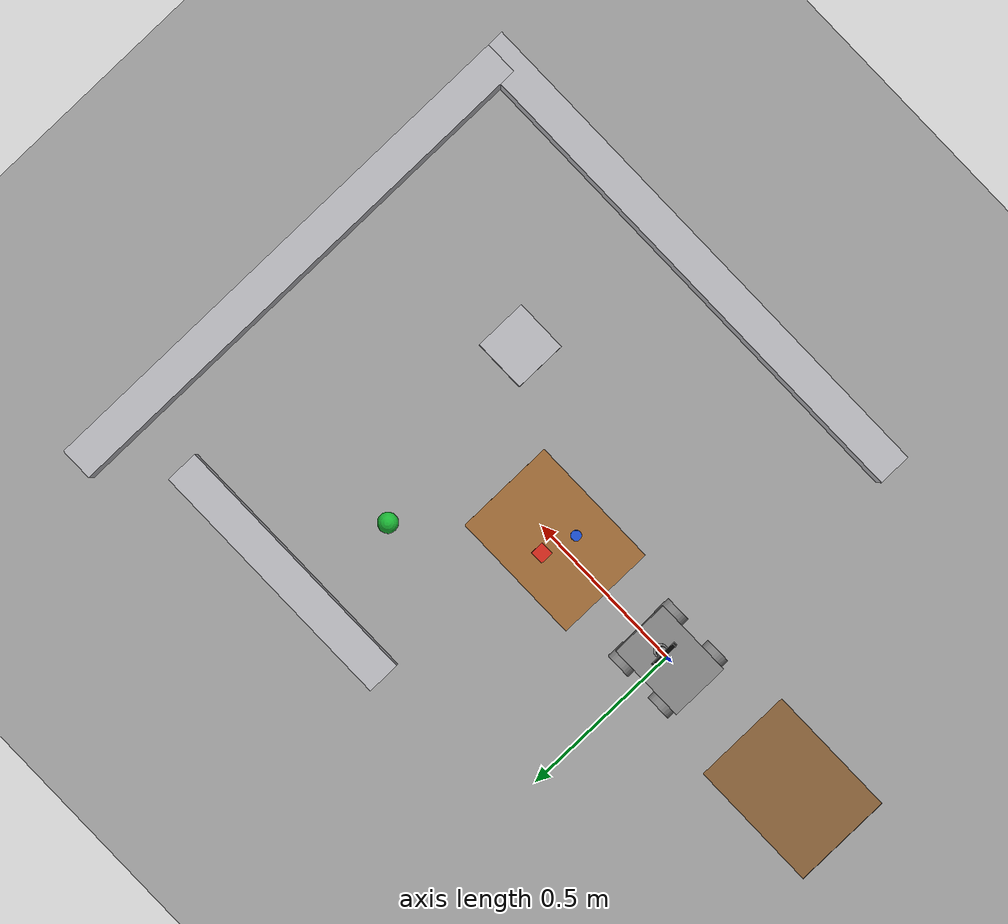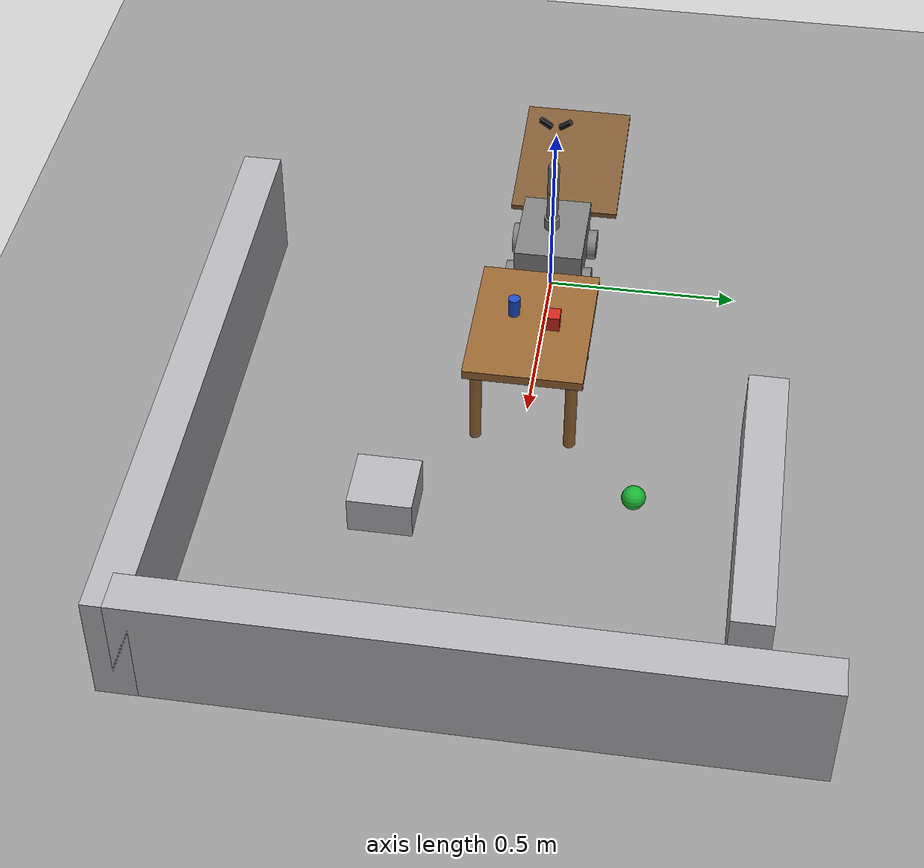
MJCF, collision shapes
<mujoco model="m3pro_basic">
  <include file="m3pro_robot.xml"/>

  <option timestep="0.002" gravity="0 0 -9.81"/>

  <visual>
    <global azimuth="135" elevation="-25"/>
    <quality shadowsize="2048"/>
  </visual>

  <asset>
    <texture type="2d" name="groundplane" builtin="checker" rgb1="0.55 0.55 0.55" rgb2="0.65 0.65 0.65" width="512" height="512" mark="edge" markrgb="0.5 0.5 0.5"/>
    <material name="groundplane" texture="groundplane" texrepeat="5 5" texuniform="true" reflectance="0.05"/>
    <material name="table_wood" rgba="0.6 0.4 0.2 1" specular="0.3" shininess="0.2"/>
    <material name="red_plastic" rgba="0.8 0.15 0.1 1" specular="0.4" shininess="0.3"/>
    <material name="blue_plastic" rgba="0.1 0.3 0.8 1" specular="0.4" shininess="0.3"/>
    <material name="wall_concrete" rgba="0.7 0.7 0.72 1" specular="0.2" shininess="0.1"/>
    <material name="ramp_wood" rgba="0.5 0.35 0.2 1" specular="0.2" shininess="0.1"/>
    <material name="green_plastic" rgba="0.1 0.7 0.2 1" specular="0.4" shininess="0.3"/>
  </asset>

  <worldbody>
    <light name="top_light" pos="0 0 3" dir="0 0 -1" diffuse="0.9 0.9 0.9" specular="0.4 0.4 0.4" castshadow="true"/>
    <light name="side_light" pos="2 -2 2" dir="-1 1 -1" diffuse="0.5 0.5 0.5" specular="0.2 0.2 0.2"/>
    <light name="fill_light" pos="-2 2 2" dir="1 -1 -1" diffuse="0.3 0.3 0.3" specular="0.1 0.1 0.1"/>
    <camera name="tracking" pos="0.6 -0.8 0.5" xyaxes="0.8 0.6 0 -0.25 0.33 0.91" mode="trackcom"/>
    <camera name="overview" pos="1.5 -1.5 2.5" xyaxes="0.707 0.707 0 -0.35 0.35 0.87" mode="fixed"/>

    <geom name="ground" type="plane" size="5 5 0.1" material="groundplane"/>

    <!-- ==================== Table ==================== -->
    <!-- Low table within arm reach (top surface at z=0.252) -->
    <body name="table" pos="0.45 0 0">
      <geom name="table_top" type="box" pos="0 0 0.24" size="0.2 0.15 0.012"
            material="table_wood" mass="5"/>
      <geom name="table_leg_fl" type="cylinder" pos="0.16 0.12 0.114" size="0.015 0.114"
            material="table_wood"/>
      <geom name="table_leg_fr" type="cylinder" pos="0.16 -0.12 0.114" size="0.015 0.114"
            material="table_wood"/>
      <geom name="table_leg_rl" type="cylinder" pos="-0.16 0.12 0.114" size="0.015 0.114"
            material="table_wood"/>
      <geom name="table_leg_rr" type="cylinder" pos="-0.16 -0.12 0.114" size="0.015 0.114"
            material="table_wood"/>
    </body>

    <!-- ==================== Graspable Objects ==================== -->
    <!-- Red box on table -->
    <body name="red_box" pos="0.45 0.05 0.272">
      <freejoint name="red_box_joint"/>
      <inertial pos="0 0 0" mass="0.05" diaginertia="1.3e-5 1.3e-5 1.3e-5"/>
      <geom name="red_box_geom" type="box" size="0.02 0.02 0.02"
            material="red_plastic" friction="1.0 0.5 0.01"/>
    </body>

    <!-- Blue cylinder on table -->
    <body name="blue_cylinder" pos="0.42 -0.05 0.277">
      <freejoint name="blue_cylinder_joint"/>
      <inertial pos="0 0 0" mass="0.03" diaginertia="5e-6 5e-6 8e-6"/>
      <geom name="blue_cylinder_geom" type="cylinder" size="0.015 0.025"
            material="blue_plastic" friction="1.0 0.5 0.01"/>
    </body>

    <!-- Green sphere on floor (push target) -->
    <body name="green_ball" pos="0.8 0.3 0.03">
      <freejoint name="green_ball_joint"/>
      <inertial pos="0 0 0" mass="0.1" diaginertia="3.6e-5 3.6e-5 3.6e-5"/>
      <geom name="green_ball_geom" type="sphere" size="0.03"
            material="green_plastic" friction="0.8 0.3 0.01"/>
    </body>

    <!-- ==================== Walls / Barriers ==================== -->
    <geom name="wall_front" type="box" pos="1.5 0 0.15" size="0.05 0.8 0.15"
          material="wall_concrete"/>
    <geom name="wall_right" type="box" pos="0.75 -0.8 0.15" size="0.8 0.05 0.15"
          material="wall_concrete"/>
    <geom name="wall_left_short" type="box" pos="0.9 0.6 0.1" size="0.4 0.05 0.1"
          material="wall_concrete"/>

    <!-- Small box obstacle on the floor -->
    <geom name="floor_obstacle" type="box" pos="0.9 -0.3 0.05" size="0.08 0.08 0.05"
          material="wall_concrete"/>

    <!-- ==================== Ramp ==================== -->
    <!-- Gentle ramp behind robot for wheel traction testing -->
    <body name="ramp" pos="-0.5 0 0">
      <geom name="ramp_surface" type="box" pos="0 0 0.038" size="0.2 0.15 0.008"
            euler="0 0.15 0" material="ramp_wood" mass="10" friction="1.5 0.5 0.01"/>
    </body>
  </worldbody>
</mujoco>

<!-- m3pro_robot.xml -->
<mujoco>
  <compiler angle="radian" meshdir="../meshes"/>

  <default>
    <geom contype="1" conaffinity="1"/>
    <joint damping="0.5" armature="0.01"/>

    <default class="visual">
      <geom contype="0" conaffinity="0" group="1"/>
    </default>

    <default class="collision">
      <geom group="3" rgba="0.5 0.5 0.5 0.3"/>
    </default>
  </default>

  <asset>
    <material name="black_aluminum" rgba="0.2 0.2 0.22 1" specular="0.6" shininess="0.3" reflectance="0.08"/>
    <material name="green_pcb" rgba="0.0 0.5 0.18 1" specular="0.3" shininess="0.2"/>
    <material name="black_rubber" rgba="0.22 0.22 0.22 1" specular="0.1" shininess="0.05"/>
    <material name="blue_servo" rgba="0.15 0.35 0.7 1" specular="0.5" shininess="0.4"/>
    <material name="silver_bracket" rgba="0.75 0.75 0.78 1" specular="0.7" shininess="0.5" reflectance="0.1"/>
    <material name="dark_plastic" rgba="0.18 0.18 0.18 1" specular="0.3" shininess="0.2"/>
    <material name="camera_body" rgba="0.22 0.22 0.24 1" specular="0.4" shininess="0.3"/>

    <mesh name="base_link" file="base_link.stl"/>
    <mesh name="arm_base_Link" file="arm_base_Link.stl"/>
    <mesh name="arm1" file="arm1.stl"/>
    <mesh name="arm2" file="arm2.stl"/>
    <mesh name="arm3" file="arm3.stl"/>
    <mesh name="arm4" file="arm4.stl"/>
    <mesh name="arm5" file="arm5.stl"/>
    <mesh name="rlink1" file="rlink1.stl"/>
    <mesh name="rlink2" file="rlink2.stl"/>
    <mesh name="llink1" file="llink1.stl"/>
    <mesh name="llink2" file="llink2.stl"/>
    <mesh name="rlink3" file="rlink3.stl"/>
    <mesh name="llink3" file="llink3.stl"/>
    <mesh name="Gripping" file="Gripping.stl"/>
    <mesh name="DCW2" file="DCW2.stl"/>
    <mesh name="Camera" file="Camera.stl"/>
    <mesh name="lwheel1" file="lwheel1.stl"/>
    <mesh name="lwheel2" file="lwheel2.stl"/>
    <mesh name="rwheel1" file="rwheel1.stl"/>
    <mesh name="rwheel2" file="rwheel2.stl"/>
  </asset>

  <worldbody>
    <body name="base_link" pos="0 0 0.042">
      <freejoint name="base_freejoint"/>
      <inertial pos="-0.0231 -0.000624 0.0924" mass="0.871"
                diaginertia="0.000965 0.000924 0.00167"/>

      <geom name="base_visual" type="mesh" mesh="base_link" class="visual"
            material="black_aluminum"/>
      <geom name="base_collision" type="box" class="collision"
            pos="-0.005 0 0.09" size="0.12 0.09 0.06"
            contype="1" conaffinity="0"/>

      <geom name="arm_base_visual" type="mesh" mesh="arm_base_Link" class="visual"
            pos="0.033617 -1.0031e-05 0" quat="1 3.18755e-05 0 0"
            material="green_pcb"/>

      <site name="imu_site" pos="0 0 0.07" size="0.005" rgba="1 0 0 0.5"/>

      <!-- Front-left wheel -->
      <body name="lwheel1" pos="0.0775754 0.09775 0.04" quat="0.707107 0.707107 0 0">
        <inertial pos="0 0 0.0109" mass="0.0973"
                  diaginertia="7.46e-05 4.45e-05 4.45e-05"/>
        <joint name="lwheel1_joint" type="hinge" axis="0 0 -1" damping="0.05" armature="0.005"/>
        <geom name="lwheel1_visual" type="mesh" mesh="lwheel1" class="visual"
              material="black_rubber"/>
        <geom name="lwheel1_collision" type="cylinder" size="0.04 0.0275"
              pos="0 0 0.0109" class="collision"
              contype="1" conaffinity="0"/>
      <body name="lwheel1_roller_0_link" pos="0.0138115 0.00370079 0.0109">
        <joint name="lwheel1_slipping_0_joint" type="hinge" pos="0 0 0" axis="-0.00198325 0.00740157 0.0275"
               damping="0.1" limited="false" actuatorfrclimited="false"/>
        <inertial pos="0 0 0" mass="0.001" diaginertia="1e-5 1e-5 1e-5"/>
        <geom name="lwheel1_roller_0_geom" type="sphere" size="0.0251969"
              contype="1" conaffinity="0" group="3" rgba="0.15 0.15 0.15 1"/>
      </body>
      <body name="lwheel1_roller_1_link" pos="0.0101107 0.0101107 0.0109">
        <joint name="lwheel1_slipping_1_joint" type="hinge" pos="0 0 0" axis="-0.00541833 0.00541833 0.0275"
               damping="0.1" limited="false" actuatorfrclimited="false"/>
        <inertial pos="0 0 0" mass="0.001" diaginertia="1e-5 1e-5 1e-5"/>
        <geom name="lwheel1_roller_1_geom" type="sphere" size="0.0251969"
              contype="1" conaffinity="0" group="3" rgba="0.15 0.15 0.15 1"/>
      </body>
      <body name="lwheel1_roller_2_link" pos="0.00370079 0.0138115 0.0109">
        <joint name="lwheel1_slipping_2_joint" type="hinge" pos="0 0 0" axis="-0.00740157 0.00198325 0.0275"
               damping="0.1" limited="false" actuatorfrclimited="false"/>
        <inertial pos="0 0 0" mass="0.001" diaginertia="1e-5 1e-5 1e-5"/>
        <geom name="lwheel1_roller_2_geom" type="sphere" size="0.0251969"
              contype="1" conaffinity="0" group="3" rgba="0.15 0.15 0.15 1"/>
      </body>
      <body name="lwheel1_roller_3_link" pos="-0.00370079 0.0138115 0.0109">
        <joint name="lwheel1_slipping_3_joint" type="hinge" pos="0 0 0" axis="-0.00740157 -0.00198325 0.0275"
               damping="0.1" limited="false" actuatorfrclimited="false"/>
        <inertial pos="0 0 0" mass="0.001" diaginertia="1e-5 1e-5 1e-5"/>
        <geom name="lwheel1_roller_3_geom" type="sphere" size="0.0251969"
              contype="1" conaffinity="0" group="3" rgba="0.15 0.15 0.15 1"/>
      </body>
      <body name="lwheel1_roller_4_link" pos="-0.0101107 0.0101107 0.0109">
        <joint name="lwheel1_slipping_4_joint" type="hinge" pos="0 0 0" axis="-0.00541833 -0.00541833 0.0275"
               damping="0.1" limited="false" actuatorfrclimited="false"/>
        <inertial pos="0 0 0" mass="0.001" diaginertia="1e-5 1e-5 1e-5"/>
        <geom name="lwheel1_roller_4_geom" type="sphere" size="0.0251969"
              contype="1" conaffinity="0" group="3" rgba="0.15 0.15 0.15 1"/>
      </body>
      <body name="lwheel1_roller_5_link" pos="-0.0138115 0.00370079 0.0109">
        <joint name="lwheel1_slipping_5_joint" type="hinge" pos="0 0 0" axis="-0.00198325 -0.00740157 0.0275"
               damping="0.1" limited="false" actuatorfrclimited="false"/>
        <inertial pos="0 0 0" mass="0.001" diaginertia="1e-5 1e-5 1e-5"/>
        <geom name="lwheel1_roller_5_geom" type="sphere" size="0.0251969"
              contype="1" conaffinity="0" group="3" rgba="0.15 0.15 0.15 1"/>
      </body>
      <body name="lwheel1_roller_6_link" pos="-0.0138115 -0.00370079 0.0109">
        <joint name="lwheel1_slipping_6_joint" type="hinge" pos="0 0 0" axis="0.00198325 -0.00740157 0.0275"
               damping="0.1" limited="false" actuatorfrclimited="false"/>
        <inertial pos="0 0 0" mass="0.001" diaginertia="1e-5 1e-5 1e-5"/>
        <geom name="lwheel1_roller_6_geom" type="sphere" size="0.0251969"
              contype="1" conaffinity="0" group="3" rgba="0.15 0.15 0.15 1"/>
      </body>
      <body name="lwheel1_roller_7_link" pos="-0.0101107 -0.0101107 0.0109">
        <joint name="lwheel1_slipping_7_joint" type="hinge" pos="0 0 0" axis="0.00541833 -0.00541833 0.0275"
               damping="0.1" limited="false" actuatorfrclimited="false"/>
        <inertial pos="0 0 0" mass="0.001" diaginertia="1e-5 1e-5 1e-5"/>
        <geom name="lwheel1_roller_7_geom" type="sphere" size="0.0251969"
              contype="1" conaffinity="0" group="3" rgba="0.15 0.15 0.15 1"/>
      </body>
      <body name="lwheel1_roller_8_link" pos="-0.00370079 -0.0138115 0.0109">
        <joint name="lwheel1_slipping_8_joint" type="hinge" pos="0 0 0" axis="0.00740157 -0.00198325 0.0275"
               damping="0.1" limited="false" actuatorfrclimited="false"/>
        <inertial pos="0 0 0" mass="0.001" diaginertia="1e-5 1e-5 1e-5"/>
        <geom name="lwheel1_roller_8_geom" type="sphere" size="0.0251969"
              contype="1" conaffinity="0" group="3" rgba="0.15 0.15 0.15 1"/>
      </body>
      <body name="lwheel1_roller_9_link" pos="0.00370079 -0.0138115 0.0109">
        <joint name="lwheel1_slipping_9_joint" type="hinge" pos="0 0 0" axis="0.00740157 0.00198325 0.0275"
               damping="0.1" limited="false" actuatorfrclimited="false"/>
        <inertial pos="0 0 0" mass="0.001" diaginertia="1e-5 1e-5 1e-5"/>
        <geom name="lwheel1_roller_9_geom" type="sphere" size="0.0251969"
              contype="1" conaffinity="0" group="3" rgba="0.15 0.15 0.15 1"/>
      </body>
      <body name="lwheel1_roller_10_link" pos="0.0101107 -0.0101107 0.0109">
        <joint name="lwheel1_slipping_10_joint" type="hinge" pos="0 0 0" axis="0.00541833 0.00541833 0.0275"
               damping="0.1" limited="false" actuatorfrclimited="false"/>
        <inertial pos="0 0 0" mass="0.001" diaginertia="1e-5 1e-5 1e-5"/>
        <geom name="lwheel1_roller_10_geom" type="sphere" size="0.0251969"
              contype="1" conaffinity="0" group="3" rgba="0.15 0.15 0.15 1"/>
      </body>
      <body name="lwheel1_roller_11_link" pos="0.0138115 -0.00370079 0.0109">
        <joint name="lwheel1_slipping_11_joint" type="hinge" pos="0 0 0" axis="0.00198325 0.00740157 0.0275"
               damping="0.1" limited="false" actuatorfrclimited="false"/>
        <inertial pos="0 0 0" mass="0.001" diaginertia="1e-5 1e-5 1e-5"/>
        <geom name="lwheel1_roller_11_geom" type="sphere" size="0.0251969"
              contype="1" conaffinity="0" group="3" rgba="0.15 0.15 0.15 1"/>
      </body>
      </body>

      <!-- Front-right wheel -->
      <body name="rwheel1" pos="0.0775754 -0.09775 0.04" quat="0.707107 -0.707107 0 0">
        <inertial pos="0 0 0.0109" mass="0.0973"
                  diaginertia="7.46e-05 4.45e-05 4.45e-05"/>
        <joint name="rwheel1_joint" type="hinge" axis="0 0 1" damping="0.05" armature="0.005"/>
        <geom name="rwheel1_visual" type="mesh" mesh="rwheel1" class="visual"
              material="black_rubber"/>
        <geom name="rwheel1_collision" type="cylinder" size="0.04 0.0275"
              pos="0 0 0.0109" class="collision"
              contype="1" conaffinity="0"/>
      <body name="rwheel1_roller_0_link" pos="0.0138115 -0.00370079 0.0109">
        <joint name="rwheel1_slipping_0_joint" type="hinge" pos="0 0 0" axis="-0.00198325 -0.00740157 0.0275"
               damping="0.1" limited="false" actuatorfrclimited="false"/>
        <inertial pos="0 0 0" mass="0.001" diaginertia="1e-5 1e-5 1e-5"/>
        <geom name="rwheel1_roller_0_geom" type="sphere" size="0.0251969"
              contype="1" conaffinity="0" group="3" rgba="0.15 0.15 0.15 1"/>
      </body>
      <body name="rwheel1_roller_1_link" pos="0.0138115 0.00370079 0.0109">
        <joint name="rwheel1_slipping_1_joint" type="hinge" pos="0 0 0" axis="0.00198325 -0.00740157 0.0275"
               damping="0.1" limited="false" actuatorfrclimited="false"/>
        <inertial pos="0 0 0" mass="0.001" diaginertia="1e-5 1e-5 1e-5"/>
        <geom name="rwheel1_roller_1_geom" type="sphere" size="0.0251969"
              contype="1" conaffinity="0" group="3" rgba="0.15 0.15 0.15 1"/>
      </body>
      <body name="rwheel1_roller_2_link" pos="0.0101107 0.0101107 0.0109">
        <joint name="rwheel1_slipping_2_joint" type="hinge" pos="0 0 0" axis="0.00541833 -0.00541833 0.0275"
               damping="0.1" limited="false" actuatorfrclimited="false"/>
        <inertial pos="0 0 0" mass="0.001" diaginertia="1e-5 1e-5 1e-5"/>
        <geom name="rwheel1_roller_2_geom" type="sphere" size="0.0251969"
              contype="1" conaffinity="0" group="3" rgba="0.15 0.15 0.15 1"/>
      </body>
      <body name="rwheel1_roller_3_link" pos="0.00370079 0.0138115 0.0109">
        <joint name="rwheel1_slipping_3_joint" type="hinge" pos="0 0 0" axis="0.00740157 -0.00198325 0.0275"
               damping="0.1" limited="false" actuatorfrclimited="false"/>
        <inertial pos="0 0 0" mass="0.001" diaginertia="1e-5 1e-5 1e-5"/>
        <geom name="rwheel1_roller_3_geom" type="sphere" size="0.0251969"
              contype="1" conaffinity="0" group="3" rgba="0.15 0.15 0.15 1"/>
      </body>
      <body name="rwheel1_roller_4_link" pos="-0.00370079 0.0138115 0.0109">
        <joint name="rwheel1_slipping_4_joint" type="hinge" pos="0 0 0" axis="0.00740157 0.00198325 0.0275"
               damping="0.1" limited="false" actuatorfrclimited="false"/>
        <inertial pos="0 0 0" mass="0.001" diaginertia="1e-5 1e-5 1e-5"/>
        <geom name="rwheel1_roller_4_geom" type="sphere" size="0.0251969"
              contype="1" conaffinity="0" group="3" rgba="0.15 0.15 0.15 1"/>
      </body>
      <body name="rwheel1_roller_5_link" pos="-0.0101107 0.0101107 0.0109">
        <joint name="rwheel1_slipping_5_joint" type="hinge" pos="0 0 0" axis="0.00541833 0.00541833 0.0275"
               damping="0.1" limited="false" actuatorfrclimited="false"/>
        <inertial pos="0 0 0" mass="0.001" diaginertia="1e-5 1e-5 1e-5"/>
        <geom name="rwheel1_roller_5_geom" type="sphere" size="0.0251969"
              contype="1" conaffinity="0" group="3" rgba="0.15 0.15 0.15 1"/>
      </body>
      <body name="rwheel1_roller_6_link" pos="-0.0138115 0.00370079 0.0109">
        <joint name="rwheel1_slipping_6_joint" type="hinge" pos="0 0 0" axis="0.00198325 0.00740157 0.0275"
               damping="0.1" limited="false" actuatorfrclimited="false"/>
        <inertial pos="0 0 0" mass="0.001" diaginertia="1e-5 1e-5 1e-5"/>
        <geom name="rwheel1_roller_6_geom" type="sphere" size="0.0251969"
              contype="1" conaffinity="0" group="3" rgba="0.15 0.15 0.15 1"/>
      </body>
      <body name="rwheel1_roller_7_link" pos="-0.0138115 -0.00370079 0.0109">
        <joint name="rwheel1_slipping_7_joint" type="hinge" pos="0 0 0" axis="-0.00198325 0.00740157 0.0275"
               damping="0.1" limited="false" actuatorfrclimited="false"/>
        <inertial pos="0 0 0" mass="0.001" diaginertia="1e-5 1e-5 1e-5"/>
        <geom name="rwheel1_roller_7_geom" type="sphere" size="0.0251969"
              contype="1" conaffinity="0" group="3" rgba="0.15 0.15 0.15 1"/>
      </body>
      <body name="rwheel1_roller_8_link" pos="-0.0101107 -0.0101107 0.0109">
        <joint name="rwheel1_slipping_8_joint" type="hinge" pos="0 0 0" axis="-0.00541833 0.00541833 0.0275"
               damping="0.1" limited="false" actuatorfrclimited="false"/>
        <inertial pos="0 0 0" mass="0.001" diaginertia="1e-5 1e-5 1e-5"/>
        <geom name="rwheel1_roller_8_geom" type="sphere" size="0.0251969"
              contype="1" conaffinity="0" group="3" rgba="0.15 0.15 0.15 1"/>
      </body>
      <body name="rwheel1_roller_9_link" pos="-0.00370079 -0.0138115 0.0109">
        <joint name="rwheel1_slipping_9_joint" type="hinge" pos="0 0 0" axis="-0.00740157 0.00198325 0.0275"
               damping="0.1" limited="false" actuatorfrclimited="false"/>
        <inertial pos="0 0 0" mass="0.001" diaginertia="1e-5 1e-5 1e-5"/>
        <geom name="rwheel1_roller_9_geom" type="sphere" size="0.0251969"
              contype="1" conaffinity="0" group="3" rgba="0.15 0.15 0.15 1"/>
      </body>
      <body name="rwheel1_roller_10_link" pos="0.00370079 -0.0138115 0.0109">
        <joint name="rwheel1_slipping_10_joint" type="hinge" pos="0 0 0" axis="-0.00740157 -0.00198325 0.0275"
               damping="0.1" limited="false" actuatorfrclimited="false"/>
        <inertial pos="0 0 0" mass="0.001" diaginertia="1e-5 1e-5 1e-5"/>
        <geom name="rwheel1_roller_10_geom" type="sphere" size="0.0251969"
              contype="1" conaffinity="0" group="3" rgba="0.15 0.15 0.15 1"/>
      </body>
      <body name="rwheel1_roller_11_link" pos="0.0101107 -0.0101107 0.0109">
        <joint name="rwheel1_slipping_11_joint" type="hinge" pos="0 0 0" axis="-0.00541833 -0.00541833 0.0275"
               damping="0.1" limited="false" actuatorfrclimited="false"/>
        <inertial pos="0 0 0" mass="0.001" diaginertia="1e-5 1e-5 1e-5"/>
        <geom name="rwheel1_roller_11_geom" type="sphere" size="0.0251969"
              contype="1" conaffinity="0" group="3" rgba="0.15 0.15 0.15 1"/>
      </body>
      </body>

      <!-- Rear-left wheel -->
      <body name="lwheel2" pos="-0.0814246 0.09775 0.04" quat="0.707107 0.707107 0 0">
        <inertial pos="0 0 0.0109" mass="0.0973"
                  diaginertia="7.46e-05 4.45e-05 4.45e-05"/>
        <joint name="lwheel2_joint" type="hinge" axis="0 0 -1" damping="0.05" armature="0.005"/>
        <geom name="lwheel2_visual" type="mesh" mesh="lwheel2" class="visual"
              material="black_rubber"/>
        <geom name="lwheel2_collision" type="cylinder" size="0.04 0.0275"
              pos="0 0 0.0109" class="collision"
              contype="1" conaffinity="0"/>
      <body name="lwheel2_roller_0_link" pos="0.0138115 -0.00370079 0.0109">
        <joint name="lwheel2_slipping_0_joint" type="hinge" pos="0 0 0" axis="-0.00198325 -0.00740157 0.0275"
               damping="0.1" limited="false" actuatorfrclimited="false"/>
        <inertial pos="0 0 0" mass="0.001" diaginertia="1e-5 1e-5 1e-5"/>
        <geom name="lwheel2_roller_0_geom" type="sphere" size="0.0251969"
              contype="1" conaffinity="0" group="3" rgba="0.15 0.15 0.15 1"/>
      </body>
      <body name="lwheel2_roller_1_link" pos="0.0138115 0.00370079 0.0109">
        <joint name="lwheel2_slipping_1_joint" type="hinge" pos="0 0 0" axis="0.00198325 -0.00740157 0.0275"
               damping="0.1" limited="false" actuatorfrclimited="false"/>
        <inertial pos="0 0 0" mass="0.001" diaginertia="1e-5 1e-5 1e-5"/>
        <geom name="lwheel2_roller_1_geom" type="sphere" size="0.0251969"
              contype="1" conaffinity="0" group="3" rgba="0.15 0.15 0.15 1"/>
      </body>
      <body name="lwheel2_roller_2_link" pos="0.0101107 0.0101107 0.0109">
        <joint name="lwheel2_slipping_2_joint" type="hinge" pos="0 0 0" axis="0.00541833 -0.00541833 0.0275"
               damping="0.1" limited="false" actuatorfrclimited="false"/>
        <inertial pos="0 0 0" mass="0.001" diaginertia="1e-5 1e-5 1e-5"/>
        <geom name="lwheel2_roller_2_geom" type="sphere" size="0.0251969"
              contype="1" conaffinity="0" group="3" rgba="0.15 0.15 0.15 1"/>
      </body>
      <body name="lwheel2_roller_3_link" pos="0.00370079 0.0138115 0.0109">
        <joint name="lwheel2_slipping_3_joint" type="hinge" pos="0 0 0" axis="0.00740157 -0.00198325 0.0275"
               damping="0.1" limited="false" actuatorfrclimited="false"/>
        <inertial pos="0 0 0" mass="0.001" diaginertia="1e-5 1e-5 1e-5"/>
        <geom name="lwheel2_roller_3_geom" type="sphere" size="0.0251969"
              contype="1" conaffinity="0" group="3" rgba="0.15 0.15 0.15 1"/>
      </body>
      <body name="lwheel2_roller_4_link" pos="-0.00370079 0.0138115 0.0109">
        <joint name="lwheel2_slipping_4_joint" type="hinge" pos="0 0 0" axis="0.00740157 0.00198325 0.0275"
               damping="0.1" limited="false" actuatorfrclimited="false"/>
        <inertial pos="0 0 0" mass="0.001" diaginertia="1e-5 1e-5 1e-5"/>
        <geom name="lwheel2_roller_4_geom" type="sphere" size="0.0251969"
              contype="1" conaffinity="0" group="3" rgba="0.15 0.15 0.15 1"/>
      </body>
      <body name="lwheel2_roller_5_link" pos="-0.0101107 0.0101107 0.0109">
        <joint name="lwheel2_slipping_5_joint" type="hinge" pos="0 0 0" axis="0.00541833 0.00541833 0.0275"
               damping="0.1" limited="false" actuatorfrclimited="false"/>
        <inertial pos="0 0 0" mass="0.001" diaginertia="1e-5 1e-5 1e-5"/>
        <geom name="lwheel2_roller_5_geom" type="sphere" size="0.0251969"
              contype="1" conaffinity="0" group="3" rgba="0.15 0.15 0.15 1"/>
      </body>
      <body name="lwheel2_roller_6_link" pos="-0.0138115 0.00370079 0.0109">
        <joint name="lwheel2_slipping_6_joint" type="hinge" pos="0 0 0" axis="0.00198325 0.00740157 0.0275"
               damping="0.1" limited="false" actuatorfrclimited="false"/>
        <inertial pos="0 0 0" mass="0.001" diaginertia="1e-5 1e-5 1e-5"/>
        <geom name="lwheel2_roller_6_geom" type="sphere" size="0.0251969"
              contype="1" conaffinity="0" group="3" rgba="0.15 0.15 0.15 1"/>
      </body>
      <body name="lwheel2_roller_7_link" pos="-0.0138115 -0.00370079 0.0109">
        <joint name="lwheel2_slipping_7_joint" type="hinge" pos="0 0 0" axis="-0.00198325 0.00740157 0.0275"
               damping="0.1" limited="false" actuatorfrclimited="false"/>
        <inertial pos="0 0 0" mass="0.001" diaginertia="1e-5 1e-5 1e-5"/>
        <geom name="lwheel2_roller_7_geom" type="sphere" size="0.0251969"
              contype="1" conaffinity="0" group="3" rgba="0.15 0.15 0.15 1"/>
      </body>
      <body name="lwheel2_roller_8_link" pos="-0.0101107 -0.0101107 0.0109">
        <joint name="lwheel2_slipping_8_joint" type="hinge" pos="0 0 0" axis="-0.00541833 0.00541833 0.0275"
               damping="0.1" limited="false" actuatorfrclimited="false"/>
        <inertial pos="0 0 0" mass="0.001" diaginertia="1e-5 1e-5 1e-5"/>
        <geom name="lwheel2_roller_8_geom" type="sphere" size="0.0251969"
              contype="1" conaffinity="0" group="3" rgba="0.15 0.15 0.15 1"/>
      </body>
      <body name="lwheel2_roller_9_link" pos="-0.00370079 -0.0138115 0.0109">
        <joint name="lwheel2_slipping_9_joint" type="hinge" pos="0 0 0" axis="-0.00740157 0.00198325 0.0275"
               damping="0.1" limited="false" actuatorfrclimited="false"/>
        <inertial pos="0 0 0" mass="0.001" diaginertia="1e-5 1e-5 1e-5"/>
        <geom name="lwheel2_roller_9_geom" type="sphere" size="0.0251969"
              contype="1" conaffinity="0" group="3" rgba="0.15 0.15 0.15 1"/>
      </body>
      <body name="lwheel2_roller_10_link" pos="0.00370079 -0.0138115 0.0109">
        <joint name="lwheel2_slipping_10_joint" type="hinge" pos="0 0 0" axis="-0.00740157 -0.00198325 0.0275"
               damping="0.1" limited="false" actuatorfrclimited="false"/>
        <inertial pos="0 0 0" mass="0.001" diaginertia="1e-5 1e-5 1e-5"/>
        <geom name="lwheel2_roller_10_geom" type="sphere" size="0.0251969"
              contype="1" conaffinity="0" group="3" rgba="0.15 0.15 0.15 1"/>
      </body>
      <body name="lwheel2_roller_11_link" pos="0.0101107 -0.0101107 0.0109">
        <joint name="lwheel2_slipping_11_joint" type="hinge" pos="0 0 0" axis="-0.00541833 -0.00541833 0.0275"
               damping="0.1" limited="false" actuatorfrclimited="false"/>
        <inertial pos="0 0 0" mass="0.001" diaginertia="1e-5 1e-5 1e-5"/>
        <geom name="lwheel2_roller_11_geom" type="sphere" size="0.0251969"
              contype="1" conaffinity="0" group="3" rgba="0.15 0.15 0.15 1"/>
      </body>
      </body>

      <!-- Rear-right wheel -->
      <body name="rwheel2" pos="-0.0814246 -0.09775 0.04" quat="0.707107 -0.707107 0 0">
        <inertial pos="0 0 0.0109" mass="0.0973"
                  diaginertia="7.46e-05 4.45e-05 4.45e-05"/>
        <joint name="rwheel2_joint" type="hinge" axis="0 0 1" damping="0.05" armature="0.005"/>
        <geom name="rwheel2_visual" type="mesh" mesh="rwheel2" class="visual"
              material="black_rubber"/>
        <geom name="rwheel2_collision" type="cylinder" size="0.04 0.0275"
              pos="0 0 0.0109" class="collision"
              contype="1" conaffinity="0"/>
      <body name="rwheel2_roller_0_link" pos="0.0138115 0.00370079 0.0109">
        <joint name="rwheel2_slipping_0_joint" type="hinge" pos="0 0 0" axis="-0.00198325 0.00740157 0.0275"
               damping="0.1" limited="false" actuatorfrclimited="false"/>
        <inertial pos="0 0 0" mass="0.001" diaginertia="1e-5 1e-5 1e-5"/>
        <geom name="rwheel2_roller_0_geom" type="sphere" size="0.0251969"
              contype="1" conaffinity="0" group="3" rgba="0.15 0.15 0.15 1"/>
      </body>
      <body name="rwheel2_roller_1_link" pos="0.0101107 0.0101107 0.0109">
        <joint name="rwheel2_slipping_1_joint" type="hinge" pos="0 0 0" axis="-0.00541833 0.00541833 0.0275"
               damping="0.1" limited="false" actuatorfrclimited="false"/>
        <inertial pos="0 0 0" mass="0.001" diaginertia="1e-5 1e-5 1e-5"/>
        <geom name="rwheel2_roller_1_geom" type="sphere" size="0.0251969"
              contype="1" conaffinity="0" group="3" rgba="0.15 0.15 0.15 1"/>
      </body>
      <body name="rwheel2_roller_2_link" pos="0.00370079 0.0138115 0.0109">
        <joint name="rwheel2_slipping_2_joint" type="hinge" pos="0 0 0" axis="-0.00740157 0.00198325 0.0275"
               damping="0.1" limited="false" actuatorfrclimited="false"/>
        <inertial pos="0 0 0" mass="0.001" diaginertia="1e-5 1e-5 1e-5"/>
        <geom name="rwheel2_roller_2_geom" type="sphere" size="0.0251969"
              contype="1" conaffinity="0" group="3" rgba="0.15 0.15 0.15 1"/>
      </body>
      <body name="rwheel2_roller_3_link" pos="-0.00370079 0.0138115 0.0109">
        <joint name="rwheel2_slipping_3_joint" type="hinge" pos="0 0 0" axis="-0.00740157 -0.00198325 0.0275"
               damping="0.1" limited="false" actuatorfrclimited="false"/>
        <inertial pos="0 0 0" mass="0.001" diaginertia="1e-5 1e-5 1e-5"/>
        <geom name="rwheel2_roller_3_geom" type="sphere" size="0.0251969"
              contype="1" conaffinity="0" group="3" rgba="0.15 0.15 0.15 1"/>
      </body>
      <body name="rwheel2_roller_4_link" pos="-0.0101107 0.0101107 0.0109">
        <joint name="rwheel2_slipping_4_joint" type="hinge" pos="0 0 0" axis="-0.00541833 -0.00541833 0.0275"
               damping="0.1" limited="false" actuatorfrclimited="false"/>
        <inertial pos="0 0 0" mass="0.001" diaginertia="1e-5 1e-5 1e-5"/>
        <geom name="rwheel2_roller_4_geom" type="sphere" size="0.0251969"
              contype="1" conaffinity="0" group="3" rgba="0.15 0.15 0.15 1"/>
      </body>
      <body name="rwheel2_roller_5_link" pos="-0.0138115 0.00370079 0.0109">
        <joint name="rwheel2_slipping_5_joint" type="hinge" pos="0 0 0" axis="-0.00198325 -0.00740157 0.0275"
               damping="0.1" limited="false" actuatorfrclimited="false"/>
        <inertial pos="0 0 0" mass="0.001" diaginertia="1e-5 1e-5 1e-5"/>
        <geom name="rwheel2_roller_5_geom" type="sphere" size="0.0251969"
              contype="1" conaffinity="0" group="3" rgba="0.15 0.15 0.15 1"/>
      </body>
      <body name="rwheel2_roller_6_link" pos="-0.0138115 -0.00370079 0.0109">
        <joint name="rwheel2_slipping_6_joint" type="hinge" pos="0 0 0" axis="0.00198325 -0.00740157 0.0275"
               damping="0.1" limited="false" actuatorfrclimited="false"/>
        <inertial pos="0 0 0" mass="0.001" diaginertia="1e-5 1e-5 1e-5"/>
        <geom name="rwheel2_roller_6_geom" type="sphere" size="0.0251969"
              contype="1" conaffinity="0" group="3" rgba="0.15 0.15 0.15 1"/>
      </body>
      <body name="rwheel2_roller_7_link" pos="-0.0101107 -0.0101107 0.0109">
        <joint name="rwheel2_slipping_7_joint" type="hinge" pos="0 0 0" axis="0.00541833 -0.00541833 0.0275"
               damping="0.1" limited="false" actuatorfrclimited="false"/>
        <inertial pos="0 0 0" mass="0.001" diaginertia="1e-5 1e-5 1e-5"/>
        <geom name="rwheel2_roller_7_geom" type="sphere" size="0.0251969"
              contype="1" conaffinity="0" group="3" rgba="0.15 0.15 0.15 1"/>
      </body>
      <body name="rwheel2_roller_8_link" pos="-0.00370079 -0.0138115 0.0109">
        <joint name="rwheel2_slipping_8_joint" type="hinge" pos="0 0 0" axis="0.00740157 -0.00198325 0.0275"
               damping="0.1" limited="false" actuatorfrclimited="false"/>
        <inertial pos="0 0 0" mass="0.001" diaginertia="1e-5 1e-5 1e-5"/>
        <geom name="rwheel2_roller_8_geom" type="sphere" size="0.0251969"
              contype="1" conaffinity="0" group="3" rgba="0.15 0.15 0.15 1"/>
      </body>
      <body name="rwheel2_roller_9_link" pos="0.00370079 -0.0138115 0.0109">
        <joint name="rwheel2_slipping_9_joint" type="hinge" pos="0 0 0" axis="0.00740157 0.00198325 0.0275"
               damping="0.1" limited="false" actuatorfrclimited="false"/>
        <inertial pos="0 0 0" mass="0.001" diaginertia="1e-5 1e-5 1e-5"/>
        <geom name="rwheel2_roller_9_geom" type="sphere" size="0.0251969"
              contype="1" conaffinity="0" group="3" rgba="0.15 0.15 0.15 1"/>
      </body>
      <body name="rwheel2_roller_10_link" pos="0.0101107 -0.0101107 0.0109">
        <joint name="rwheel2_slipping_10_joint" type="hinge" pos="0 0 0" axis="0.00541833 0.00541833 0.0275"
               damping="0.1" limited="false" actuatorfrclimited="false"/>
        <inertial pos="0 0 0" mass="0.001" diaginertia="1e-5 1e-5 1e-5"/>
        <geom name="rwheel2_roller_10_geom" type="sphere" size="0.0251969"
              contype="1" conaffinity="0" group="3" rgba="0.15 0.15 0.15 1"/>
      </body>
      <body name="rwheel2_roller_11_link" pos="0.0138115 -0.00370079 0.0109">
        <joint name="rwheel2_slipping_11_joint" type="hinge" pos="0 0 0" axis="0.00198325 0.00740157 0.0275"
               damping="0.1" limited="false" actuatorfrclimited="false"/>
        <inertial pos="0 0 0" mass="0.001" diaginertia="1e-5 1e-5 1e-5"/>
        <geom name="rwheel2_roller_11_geom" type="sphere" size="0.0251969"
              contype="1" conaffinity="0" group="3" rgba="0.15 0.15 0.15 1"/>
      </body>
      </body>

      <!-- Depth Camera -->
      <body name="camera_link" pos="0.0909155 0.000198 0.0935" quat="0.707107 0.707107 0 0">
        <inertial pos="-0.00516 0.01716 0" mass="0.054"
                  diaginertia="3.1e-05 3.0e-05 5.8e-06"/>
        <geom name="camera_visual" type="mesh" mesh="Camera" class="visual"
              material="camera_body"/>
        <camera name="depth_camera_rgb" pos="0 0.025 0" quat="0.5 0.5 -0.5 0.5"
                fovy="58" resolution="640 480"/>
        <camera name="depth_camera_depth" pos="0 0.025 0" quat="0.5 0.5 -0.5 0.5"
                fovy="58" resolution="640 480"/>
      </body>

      <!-- 6-DOF Arm -->
      <body name="arm1" pos="0.033617 -1.2421e-05 0.185" quat="0.999899 3.18723e-05 4.52537e-07 0.014197">
        <inertial pos="2.14e-05 -2.29e-05 0.0109" quat="0.507 0.493 -0.507 0.493"
                  mass="0.0244" diaginertia="6.04e-06 4.13e-06 3.52e-06"/>
        <joint name="arm1_joint" axis="0 0 1" range="-1.5708 1.5708" damping="1.0" armature="0.01"/>
        <geom name="arm1_visual" type="mesh" mesh="arm1" class="visual"
              material="blue_servo"/>
        <geom name="arm1_collision" type="cylinder" class="collision"
              pos="0 0 0.015" size="0.02 0.015"/>

        <body name="arm2" pos="-0.0021522 6.1185e-05 0.033" quat="0.999899 -3.18593e-05 4.52783e-07 -0.0142105">
          <inertial pos="-0.0006 -9.3e-05 0.0264" quat="1 0.00269 0 0"
                    mass="0.0615" diaginertia="2.11e-05 1.64e-05 9.72e-06"/>
          <joint name="arm2_joint" axis="0 -1 -6.3725e-05" range="-1.5708 1.5708" damping="1.0" armature="0.01"/>
          <geom name="arm2_visual" type="mesh" mesh="arm2" class="visual"
                material="silver_bracket"/>
          <geom name="arm2_collision" type="capsule" class="collision"
                pos="0 0 0.04" size="0.015 0.04"/>

          <body name="arm3" pos="0 0 0.08285" quat="0.999908 3.18481e-05 4.316e-07 0.0135506">
            <inertial pos="-0.0006 -7.5e-05 0.0258" quat="1 0.00266 0 -0.01355"
                      mass="0.0615" diaginertia="2.11e-05 1.64e-05 9.72e-06"/>
            <joint name="arm3_joint" axis="-0.027 -0.9996 0" range="-1.5708 1.5708" damping="1.0" armature="0.01"/>
            <geom name="arm3_visual" type="mesh" mesh="arm3" class="visual"
                  material="silver_bracket"/>
            <geom name="arm3_collision" type="capsule" class="collision"
                  pos="0 0 0.04" size="0.015 0.04"/>

            <body name="arm4" pos="0 0 0.08285" quat="0.999908 0 0 -0.0135371">
              <inertial pos="0.00266 -5.5e-05 0.0318" mass="0.0797"
                        diaginertia="1.97e-05 1.75e-05 1.24e-05"/>
              <joint name="arm4_joint" axis="-2.64e-05 -1 0" range="-1.5708 1.5708" damping="0.5" armature="0.01"/>
              <geom name="arm4_visual" type="mesh" mesh="arm4" class="visual"
                    material="blue_servo"/>
              <geom name="dcw2_visual" type="mesh" mesh="DCW2" class="visual"
                    pos="-0.0484 0.00245 0.0672" quat="0.707 0.01 -0.707 0.01"
                    material="dark_plastic"/>

              <body name="arm5" pos="0.00057305 0 0.074815">
                <inertial pos="0.0186 -0.00247 0.0265" mass="0.0410"
                          diaginertia="5.48e-06 5.25e-06 1.91e-06"/>
                <joint name="arm5_joint" axis="0 0 1" range="-1.5708 1.5708" damping="0.5" armature="0.01"/>
                <geom name="arm5_visual" type="mesh" mesh="arm5" class="visual"
                      material="blue_servo"/>
                <geom name="gripping_visual" type="mesh" mesh="Gripping" class="visual"
                      pos="-0.000625 0.00024 0.093235"
                      quat="0.707105 -1.02e-05 -0.707108 -1.03e-05"
                      material="silver_bracket"/>

                <!-- Gripper right finger -->
                <body name="rlink1" pos="-0.0047503 -0.012625 0.029275" quat="0.6261 0.328628 -0.626103 -0.328628">
                  <inertial pos="0.00809 0.000355 -0.000465" mass="0.00470"
                            diaginertia="5.46e-07 4.54e-07 1.01e-07"/>
                  <joint name="rlink1_joint" axis="0 0 -1" range="-0.95 0" damping="0.1" armature="0.005"/>
                  <geom name="rlink1_visual" type="mesh" mesh="rlink1" class="visual"
                        material="silver_bracket"/>
                  <body name="rlink2" pos="0.03 0 0.001" quat="0.885443 0 0 0.464748">
                    <inertial pos="0.02257 0.00616 -0.005" mass="0.00614"
                              diaginertia="1.58e-06 1.54e-06 4.67e-08"/>
                    <joint name="rlink2_joint" axis="0 0 1"/>
                    <geom name="rlink2_visual" type="mesh" mesh="rlink2" class="visual"
                          material="silver_bracket"/>
                  </body>
                </body>

                <!-- Gripper left finger -->
                <body name="llink1" pos="-0.0044997 0.012375 0.029275" quat="0.625951 -0.328913 -0.625953 0.328913">
                  <inertial pos="0.00885 -0.000342 -0.000169" mass="0.00427"
                            diaginertia="5.37e-07 4.56e-07 8.80e-08"/>
                  <joint name="llink1_joint" axis="0 0 1"/>
                  <geom name="llink1_visual" type="mesh" mesh="llink1" class="visual"
                        material="silver_bracket"/>
                  <body name="llink2" pos="0.03 0 0.00125" quat="0.885229 0 0 -0.465155">
                    <inertial pos="0.02263 -0.00593 -0.00525" mass="0.00614"
                              diaginertia="1.58e-06 1.54e-06 4.67e-08"/>
                    <joint name="llink2_joint" axis="0 0 1"/>
                    <geom name="llink2_visual" type="mesh" mesh="llink2" class="visual"
                          material="silver_bracket"/>
                  </body>
                </body>

                <!-- Gripper right tip -->
                <body name="rlink3" pos="-0.0045001 -0.0044999 0.047275" quat="0.627495 0.325958 -0.627497 -0.325958">
                  <inertial pos="0.01479 0 -0.00271" mass="0.00271"
                            diaginertia="1.64e-07 1.63e-07 9.18e-09"/>
                  <joint name="rlink3_joint" axis="0 0 1"/>
                  <geom name="rlink3_visual" type="mesh" mesh="rlink3" class="visual"
                        material="silver_bracket"/>
                  <geom name="right_finger_pad" type="box" class="collision"
                        pos="0.025 0 -0.003" size="0.018 0.006 0.006"
                        rgba="0.05 0.05 0.05 0.35" friction="2.0 0.5 0.5" mass="0.001"/>
                </body>

                <!-- Gripper left tip -->
                <body name="llink3" pos="-0.0044999 0.0045001 0.047275" quat="0.62791 -0.325158 -0.627912 0.325158">
                  <inertial pos="0.01479 0 -0.00271" mass="0.00271"
                            diaginertia="1.64e-07 1.63e-07 9.18e-09"/>
                  <joint name="llink3_joint" axis="0 0 1"/>
                  <geom name="llink3_visual" type="mesh" mesh="llink3" class="visual"
                        material="silver_bracket"/>
                  <geom name="left_finger_pad" type="box" class="collision"
                        pos="0.025 0 -0.003" size="0.018 0.006 0.006"
                        rgba="0.05 0.05 0.05 0.35" friction="2.0 0.5 0.5" mass="0.001"/>
                </body>
              </body>
            </body>
          </body>
        </body>
      </body>

      <!-- LiDAR Sites -->
      <site name="lidar_front_site" pos="0.10 0.06 0.10" size="0.01" rgba="0 1 0 0.5"/>
      <site name="lidar_rear_site" pos="-0.10 -0.06 0.10" size="0.01" rgba="0 1 0 0.5"/>

    </body>
  </worldbody>

  <equality>
    <joint joint1="llink1_joint" joint2="rlink1_joint" polycoef="0 1 0 0 0"/>
    <joint joint1="rlink2_joint" joint2="rlink1_joint" polycoef="0 1 0 0 0"/>
    <joint joint1="llink2_joint" joint2="rlink1_joint" polycoef="0 -1 0 0 0"/>
    <joint joint1="rlink3_joint" joint2="rlink1_joint" polycoef="0 -1 0 0 0"/>
    <joint joint1="llink3_joint" joint2="rlink1_joint" polycoef="0 1 0 0 0"/>
  </equality>

  <actuator>
    <motor name="fl_wheel_motor" joint="lwheel1_joint" ctrlrange="-0.5 0.5"/>
    <motor name="fr_wheel_motor" joint="rwheel1_joint" ctrlrange="-0.5 0.5"/>
    <motor name="rl_wheel_motor" joint="lwheel2_joint" ctrlrange="-0.5 0.5"/>
    <motor name="rr_wheel_motor" joint="rwheel2_joint" ctrlrange="-0.5 0.5"/>

    <position name="arm1_motor" joint="arm1_joint" kp="30" ctrlrange="-1.5708 1.5708"/>
    <position name="arm2_motor" joint="arm2_joint" kp="30" ctrlrange="-1.5708 1.5708"/>
    <position name="arm3_motor" joint="arm3_joint" kp="30" ctrlrange="-1.5708 1.5708"/>
    <position name="arm4_motor" joint="arm4_joint" kp="20" ctrlrange="-1.5708 1.5708"/>
    <position name="arm5_motor" joint="arm5_joint" kp="20" ctrlrange="-1.5708 1.5708"/>

    <position name="gripper_motor" joint="rlink1_joint" kp="25" ctrlrange="-0.95 0"/>
  </actuator>

  <sensor>
    <framequat name="imu_quat" objtype="site" objname="imu_site"/>
    <gyro name="imu_gyro" site="imu_site"/>
    <accelerometer name="imu_accel" site="imu_site"/>

    <jointpos name="fl_wheel_pos" joint="lwheel1_joint"/>
    <jointpos name="fr_wheel_pos" joint="rwheel1_joint"/>
    <jointpos name="rl_wheel_pos" joint="lwheel2_joint"/>
    <jointpos name="rr_wheel_pos" joint="rwheel2_joint"/>
    <jointvel name="fl_wheel_vel" joint="lwheel1_joint"/>
    <jointvel name="fr_wheel_vel" joint="rwheel1_joint"/>
    <jointvel name="rl_wheel_vel" joint="lwheel2_joint"/>
    <jointvel name="rr_wheel_vel" joint="rwheel2_joint"/>

    <jointpos name="arm1_pos" joint="arm1_joint"/>
    <jointpos name="arm2_pos" joint="arm2_joint"/>
    <jointpos name="arm3_pos" joint="arm3_joint"/>
    <jointpos name="arm4_pos" joint="arm4_joint"/>
    <jointpos name="arm5_pos" joint="arm5_joint"/>
    <jointpos name="gripper_pos" joint="rlink1_joint"/>
  </sensor>
</mujoco>
